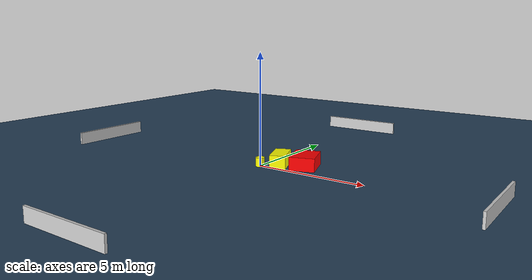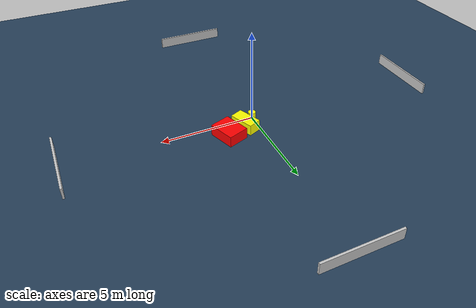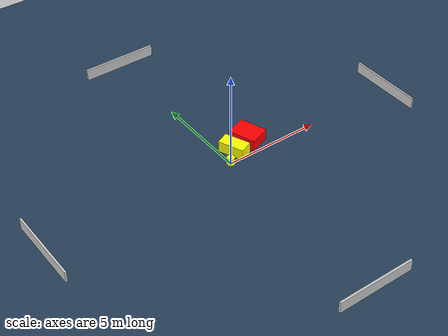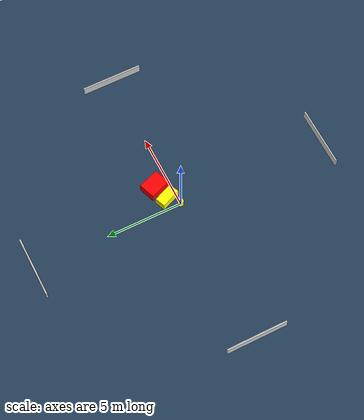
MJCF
<?xml version="1.0" ?>
<mujoco model="generated_environment">
  <option timestep="0.01" integrator="RK4" cone="elliptic"/>
  <default>
    <geom density="1"/>
  </default>
  <asset>
    <texture builtin="gradient" height="3072" name="skybox" rgb1="0.3 0.5 0.7" rgb2="0 0 0" type="skybox" width="512"/>
    <texture builtin="checker" height="300" name="groundplane" rgb1="0.2 0.3 0.4" rgb2="0.1 0.2 0.3" type="2d" width="300"/>
    <material name="groundplane" reflectance="0.2" texrepeat="5 5" texture="groundplane"/>
  </asset>
  <worldbody>
    <light dir="0 0 -1" directional="true" pos="0 0 1.5"/>
    <geom condim="3" friction="0.5 0.005 0.001" material="groundplane" name="floor" pos="0 0 0" size="0 0 0.05" type="plane"/>
    <body name="walls">
      <geom name="wall_1" condim="4" pos="-10.0 0.0 0.3" rgba="0.800000011920929 0.800000011920929 0.800000011920929 1.0" size="0.05 2.0 0.3" type="box"/>
      <geom name="wall_2" condim="4" pos="10.0 0.0 0.3" rgba="0.800000011920929 0.800000011920929 0.800000011920929 1.0" size="0.05 2.0 0.3" type="box"/>
      <geom name="wall_3" condim="4" pos="0.0 -10.0 0.3" rgba="0.800000011920929 0.800000011920929 0.800000011920929 1.0" size="2.0 0.05 0.3" type="box"/>
      <geom name="wall_4" condim="4" pos="0.0 10.0 0.3" rgba="0.800000011920929 0.800000011920929 0.800000011920929 1.0" size="2.0 0.05 0.3" type="box"/>
    </body>
    <body name="robot">
      <joint name="joint_x" type="slide" pos="0 0 0" axis="1 0 0"/>
      <joint name="joint_y" type="slide" pos="0 0 0" axis="0 1 0"/>
      <geom name="robot" type="cylinder" pos="0.0 0.0 0.2" size="0.2 0.2 0.0" mass="5.0" friction="1.0 0.005 0.0001" condim="4" rgba="1.0 1.0 0.0 1.0"/>
    </body>
    <body name="obstacle_1_movable">
      <geom name="obstacle_1_movable" condim="4" pos="0.6565790674486833 0.6149009008159232 0.3" euler="0 0 22.463689975013082" friction="0.0 0.005 0.001" rgba="1.0 1.0 0.0 1.0" size="0.3493148995879527 0.6778078337743978 0.3" type="box" mass="0.1"/>
      <joint type="free"/>
    </body>
    <body name="obstacle_2_static">
      <geom name="obstacle_2_static" condim="4" pos="1.7247961564226149 0.9564845032513476 0.3" euler="0 0 109.41247015882439" friction="0.0 0.005 0.001" rgba="1.0 0.0 0.0 1.0" size="0.7213127774657475 0.5542303587800712 0.3" type="box"/>
    </body>
  </worldbody>
  <actuator>
    <motor name="actuator_x" joint="joint_x" gear="1" ctrlrange="-1 1"/>
    <motor name="actuator_y" joint="joint_y" gear="1" ctrlrange="-1 1"/>
  </actuator>
</mujoco>
